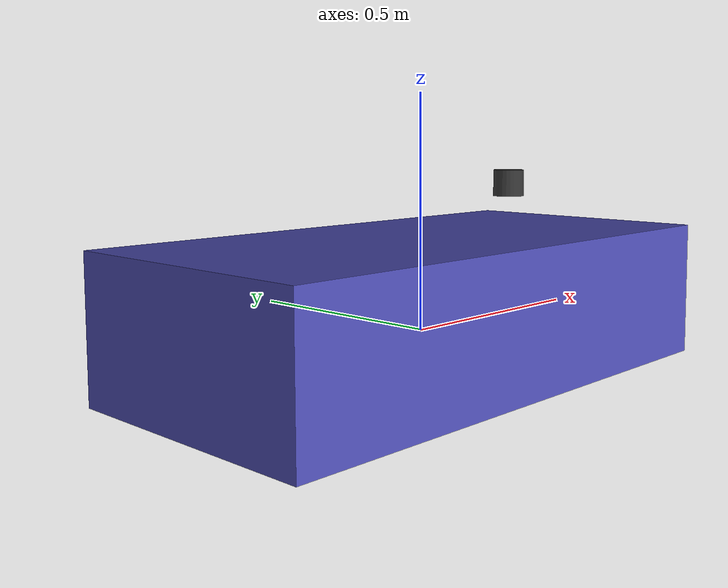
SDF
<?xml version="1.0" ?>
<sdf version="1.9">
  <model name="idaws_usv">
    <pose>0 0 0.05 0 0 0</pose>

    <!-- Base hull -->
    <link name="base_link">
      <inertial>
        <mass>12.0</mass>
        <inertia>
          <ixx>0.465</ixx>
          <iyy>1.53</iyy>
          <izz>1.8</izz>
          <ixy>0</ixy><ixz>0</ixz><iyz>0</iyz>
        </inertia>
      </inertial>
      <collision name="hull_collision">
        <geometry>
          <box><size>1.2 0.6 0.3</size></box>
        </geometry>
      </collision>
      <visual name="hull_visual">
        <geometry>
          <box><size>1.2 0.6 0.3</size></box>
        </geometry>
        <material>
          <ambient>0.2 0.2 0.6 1</ambient>
          <diffuse>0.3 0.3 0.7 1</diffuse>
        </material>
      </visual>
    </link>

    <!-- IMU link -->
    <link name="imu_link">
      <pose>0 0 0.1 0 0 0</pose>
      <inertial>
        <mass>0.01</mass>
        <inertia>
          <ixx>0.0001</ixx>
          <iyy>0.0001</iyy>
          <izz>0.0001</izz>
        </inertia>
      </inertial>
      <sensor name="imu_sensor" type="imu">
        <always_on>1</always_on>
        <update_rate>200</update_rate>
        <imu>
          <angular_velocity>
            <x><noise type="gaussian"><mean>0</mean><stddev>0.01</stddev></noise></x>
            <y><noise type="gaussian"><mean>0</mean><stddev>0.01</stddev></noise></y>
            <z><noise type="gaussian"><mean>0</mean><stddev>0.01</stddev></noise></z>
          </angular_velocity>
          <linear_acceleration>
            <x><noise type="gaussian"><mean>0</mean><stddev>0.1</stddev></noise></x>
            <y><noise type="gaussian"><mean>0</mean><stddev>0.1</stddev></noise></y>
            <z><noise type="gaussian"><mean>0</mean><stddev>0.1</stddev></noise></z>
          </linear_acceleration>
        </imu>
      </sensor>
    </link>
    <joint name="imu_joint" type="fixed">
      <parent>base_link</parent>
      <child>imu_link</child>
    </joint>

    <!-- LiDAR link -->
    <link name="lidar_link">
      <pose>0.3 0 0.25 0 0 0</pose>
      <inertial>
        <mass>0.1</mass>
        <inertia>
          <ixx>0.001</ixx>
          <iyy>0.001</iyy>
          <izz>0.001</izz>
        </inertia>
      </inertial>
      <collision name="lidar_collision">
        <geometry>
          <cylinder><radius>0.035</radius><length>0.06</length></cylinder>
        </geometry>
      </collision>
      <visual name="lidar_visual">
        <geometry>
          <cylinder><radius>0.035</radius><length>0.06</length></cylinder>
        </geometry>
        <material>
          <ambient>0.1 0.1 0.1 1</ambient>
          <diffuse>0.2 0.2 0.2 1</diffuse>
        </material>
      </visual>
      <sensor name="gpu_lidar" type="gpu_lidar">
        <always_on>1</always_on>
        <update_rate>10</update_rate>
        <visualize>1</visualize>
        <ray>
          <scan>
            <horizontal>
              <samples>720</samples>
              <resolution>1</resolution>
              <min_angle>-3.14159</min_angle>
              <max_angle>3.14159</max_angle>
            </horizontal>
            <vertical>
              <samples>1</samples>
              <resolution>1</resolution>
              <min_angle>0</min_angle>
              <max_angle>0</max_angle>
            </vertical>
          </scan>
          <range>
            <min>0.15</min>
            <max>12.0</max>
            <resolution>0.01</resolution>
          </range>
          <noise>
            <type>gaussian</type>
            <mean>0</mean>
            <stddev>0.005</stddev>
          </noise>
        </ray>
      </sensor>
    </link>
    <joint name="lidar_joint" type="fixed">
      <parent>base_link</parent>
      <child>lidar_link</child>
    </joint>

    <!-- Left propeller -->
    <link name="left_propeller">
      <pose>-0.5 0.25 -0.1 0 0 0</pose>
      <inertial>
        <mass>0.2</mass>
        <inertia>
          <ixx>0.0004</ixx>
          <iyy>0.0004</iyy>
          <izz>0.0004</izz>
        </inertia>
      </inertial>
      <visual name="left_prop_visual">
        <geometry>
          <cylinder><radius>0.05</radius><length>0.02</length></cylinder>
        </geometry>
        <material>
          <ambient>0.8 0.2 0.2 1</ambient>
          <diffuse>0.9 0.3 0.3 1</diffuse>
        </material>
      </visual>
    </link>
    <joint name="left_propeller_joint" type="revolute">
      <parent>base_link</parent>
      <child>left_propeller</child>
      <axis>
        <xyz>0 0 1</xyz>
        <limit>
          <lower>-1e16</lower>
          <upper>1e16</upper>
        </limit>
      </axis>
    </joint>

    <!-- Right propeller -->
    <link name="right_propeller">
      <pose>-0.5 -0.25 -0.1 0 0 0</pose>
      <inertial>
        <mass>0.2</mass>
        <inertia>
          <ixx>0.0004</ixx>
          <iyy>0.0004</iyy>
          <izz>0.0004</izz>
        </inertia>
      </inertial>
      <visual name="right_prop_visual">
        <geometry>
          <cylinder><radius>0.05</radius><length>0.02</length></cylinder>
        </geometry>
        <material>
          <ambient>0.2 0.8 0.2 1</ambient>
          <diffuse>0.3 0.9 0.3 1</diffuse>
        </material>
      </visual>
    </link>
    <joint name="right_propeller_joint" type="revolute">
      <parent>base_link</parent>
      <child>right_propeller</child>
      <axis>
        <xyz>0 0 1</xyz>
        <limit>
          <lower>-1e16</lower>
          <upper>1e16</upper>
        </limit>
      </axis>
    </joint>

    <!-- ArduPilot plugin -->
    <plugin name="ArduPilotPlugin" filename="ArduPilotPlugin">
      <fdm_addr>127.0.0.1</fdm_addr>
      <fdm_port_in>9002</fdm_port_in>
      <connectionTimeoutMaxCount>5</connectionTimeoutMaxCount>
      <lock_step>0</lock_step>

      <modelXYZToAirplaneXForwardZDown degrees="true">0 0 0 180 0 0</modelXYZToAirplaneXForwardZDown>
      <gazeboXYZToNED degrees="true">0 0 0 180 0 90</gazeboXYZToNED>

      <imuName>imu_link::imu_sensor</imuName>

      <!-- Channel 0: SERVO1 = ThrottleLeft -->
      <control channel="0">
        <jointName>left_propeller_joint</jointName>
        <useForce>1</useForce>
        <multiplier>100</multiplier>
        <offset>-0.5</offset>
        <servo_min>1100</servo_min>
        <servo_max>1900</servo_max>
        <type>VELOCITY</type>
        <p_gain>0.2</p_gain>
        <i_gain>0</i_gain>
        <d_gain>0</d_gain>
        <i_max>0</i_max>
        <i_min>0</i_min>
        <cmd_max>100</cmd_max>
        <cmd_min>-100</cmd_min>
      </control>

      <!-- Channel 2: SERVO3 = ThrottleRight -->
      <control channel="2">
        <jointName>right_propeller_joint</jointName>
        <useForce>1</useForce>
        <multiplier>100</multiplier>
        <offset>-0.5</offset>
        <servo_min>1100</servo_min>
        <servo_max>1900</servo_max>
        <type>VELOCITY</type>
        <p_gain>0.2</p_gain>
        <i_gain>0</i_gain>
        <d_gain>0</d_gain>
        <i_max>0</i_max>
        <i_min>0</i_min>
        <cmd_max>100</cmd_max>
        <cmd_min>-100</cmd_min>
      </control>
    </plugin>

  </model>
</sdf>
